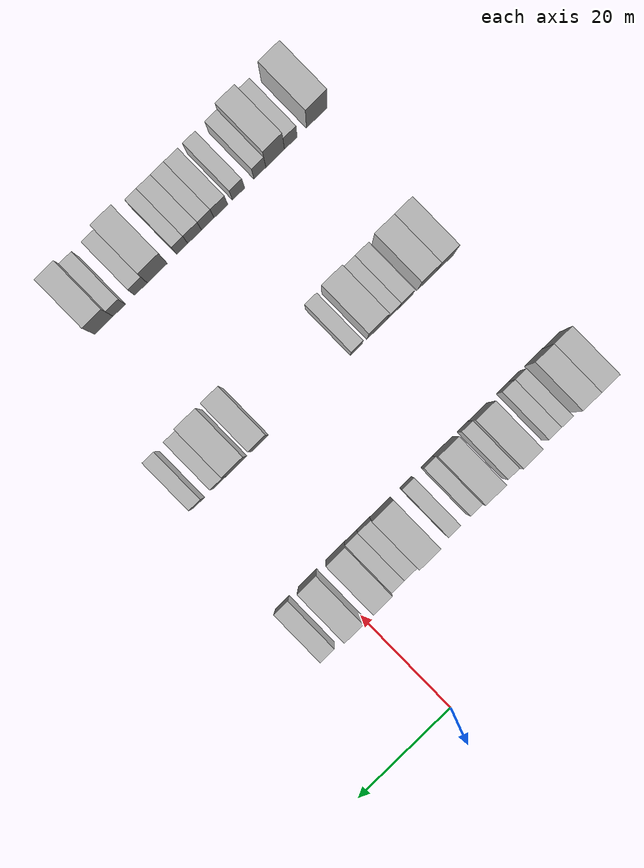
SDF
<sdf version="1.6">
 <world name="default">
  <model name="building_96">
   <static>1</static>
   <pose>25.0000 -50.8643 0 0.000000 0.000000 0.000000</pose>
   <link name="link">
    <pose>0 0 4.50 0 0 0</pose>
    <collision name="collision"><geometry><box><size>10.0000 3.7616 9.0000</size></box></geometry></collision>
    <visual name="visual">
     <cast_shadows>0</cast_shadows>
     <geometry><box><size>10.0000 3.7616 9.0000</size></box></geometry>
     <material>
      <script>
       <uri>model://HANNAS_wall/materials/scripts</uri>
       <uri>model://HANNAS_wall/materials/textures</uri>
       <name>vrc/HANNAS_wall</name>
      </script>
     </material>
    </visual>
   </link>
  </model>
  <model name="building_97">
   <static>1</static>
   <pose>25.0000 -47.0470 0 0.000000 0.000000 0.000000</pose>
   <link name="link">
    <pose>0 0 4.50 0 0 0</pose>
    <collision name="collision"><geometry><box><size>10.0000 3.8730 9.0000</size></box></geometry></collision>
    <visual name="visual">
     <cast_shadows>0</cast_shadows>
     <geometry><box><size>10.0000 3.8730 9.0000</size></box></geometry>
     <material>
      <script>
       <uri>model://HANNAS_wall/materials/scripts</uri>
       <uri>model://HANNAS_wall/materials/textures</uri>
       <name>vrc/HANNAS_wall</name>
      </script>
     </material>
    </visual>
   </link>
  </model>
  <model name="building_98">
   <static>1</static>
   <pose>25.0000 -42.9027 0 0.000000 0.000000 0.000000</pose>
   <link name="link">
    <pose>0 0 3.00 0 0 0</pose>
    <collision name="collision"><geometry><box><size>10.0000 2.4157 6.0000</size></box></geometry></collision>
    <visual name="visual">
     <cast_shadows>0</cast_shadows>
     <geometry><box><size>10.0000 2.4157 6.0000</size></box></geometry>
     <material>
      <script>
       <uri>model://HANNAS_wall/materials/scripts</uri>
       <uri>model://HANNAS_wall/materials/textures</uri>
       <name>vrc/HANNAS_wall</name>
      </script>
     </material>
    </visual>
   </link>
  </model>
  <model name="building_99">
   <static>1</static>
   <pose>25.0000 -40.3628 0 0.000000 0.000000 0.000000</pose>
   <link name="link">
    <pose>0 0 3.00 0 0 0</pose>
    <collision name="collision"><geometry><box><size>10.0000 2.6640 6.0000</size></box></geometry></collision>
    <visual name="visual">
     <cast_shadows>0</cast_shadows>
     <geometry><box><size>10.0000 2.6640 6.0000</size></box></geometry>
     <material>
      <script>
       <uri>model://HANNAS_wall/materials/scripts</uri>
       <uri>model://HANNAS_wall/materials/textures</uri>
       <name>vrc/HANNAS_wall</name>
      </script>
     </material>
    </visual>
   </link>
  </model>
  <model name="building_100">
   <static>1</static>
   <pose>25.0000 -34.9728 0 0.000000 0.000000 0.000000</pose>
   <link name="link">
    <pose>0 0 4.50 0 0 0</pose>
    <collision name="collision"><geometry><box><size>10.0000 4.1158 9.0000</size></box></geometry></collision>
    <visual name="visual">
     <cast_shadows>0</cast_shadows>
     <geometry><box><size>10.0000 4.1158 9.0000</size></box></geometry>
     <material>
      <script>
       <uri>model://HANNAS_wall/materials/scripts</uri>
       <uri>model://HANNAS_wall/materials/textures</uri>
       <name>vrc/HANNAS_wall</name>
      </script>
     </material>
    </visual>
   </link>
  </model>
  <model name="building_101">
   <static>1</static>
   <pose>25.0000 -31.7140 0 0.000000 0.000000 0.000000</pose>
   <link name="link">
    <pose>0 0 3.00 0 0 0</pose>
    <collision name="collision"><geometry><box><size>10.0000 2.4019 6.0000</size></box></geometry></collision>
    <visual name="visual">
     <cast_shadows>0</cast_shadows>
     <geometry><box><size>10.0000 2.4019 6.0000</size></box></geometry>
     <material>
      <script>
       <uri>model://HANNAS_wall/materials/scripts</uri>
       <uri>model://HANNAS_wall/materials/textures</uri>
       <name>vrc/HANNAS_wall</name>
      </script>
     </material>
    </visual>
   </link>
  </model>
  <model name="building_102">
   <static>1</static>
   <pose>25.0000 -27.3661 0 0.000000 0.000000 0.000000</pose>
   <link name="link">
    <pose>0 0 4.50 0 0 0</pose>
    <collision name="collision"><geometry><box><size>10.0000 4.2939 9.0000</size></box></geometry></collision>
    <visual name="visual">
     <cast_shadows>0</cast_shadows>
     <geometry><box><size>10.0000 4.2939 9.0000</size></box></geometry>
     <material>
      <script>
       <uri>model://HANNAS_wall/materials/scripts</uri>
       <uri>model://HANNAS_wall/materials/textures</uri>
       <name>vrc/HANNAS_wall</name>
      </script>
     </material>
    </visual>
   </link>
  </model>
  <model name="building_103">
   <static>1</static>
   <pose>25.0000 -23.9386 0 0.000000 0.000000 0.000000</pose>
   <link name="link">
    <pose>0 0 3.00 0 0 0</pose>
    <collision name="collision"><geometry><box><size>10.0000 2.5613 6.0000</size></box></geometry></collision>
    <visual name="visual">
     <cast_shadows>0</cast_shadows>
     <geometry><box><size>10.0000 2.5613 6.0000</size></box></geometry>
     <material>
      <script>
       <uri>model://HANNAS_wall/materials/scripts</uri>
       <uri>model://HANNAS_wall/materials/textures</uri>
       <name>vrc/HANNAS_wall</name>
      </script>
     </material>
    </visual>
   </link>
  </model>
  <model name="building_104">
   <static>1</static>
   <pose>25.0000 -19.3728 0 0.000000 0.000000 0.000000</pose>
   <link name="link">
    <pose>0 0 3.00 0 0 0</pose>
    <collision name="collision"><geometry><box><size>10.0000 2.5702 6.0000</size></box></geometry></collision>
    <visual name="visual">
     <cast_shadows>0</cast_shadows>
     <geometry><box><size>10.0000 2.5702 6.0000</size></box></geometry>
     <material>
      <script>
       <uri>model://HANNAS_wall/materials/scripts</uri>
       <uri>model://HANNAS_wall/materials/textures</uri>
       <name>vrc/HANNAS_wall</name>
      </script>
     </material>
    </visual>
   </link>
  </model>
  <model name="building_105">
   <static>1</static>
   <pose>25.0000 -13.8428 0 0.000000 0.000000 0.000000</pose>
   <link name="link">
    <pose>0 0 4.50 0 0 0</pose>
    <collision name="collision"><geometry><box><size>10.0000 4.4898 9.0000</size></box></geometry></collision>
    <visual name="visual">
     <cast_shadows>0</cast_shadows>
     <geometry><box><size>10.0000 4.4898 9.0000</size></box></geometry>
     <material>
      <script>
       <uri>model://HANNAS_wall/materials/scripts</uri>
       <uri>model://HANNAS_wall/materials/textures</uri>
       <name>vrc/HANNAS_wall</name>
      </script>
     </material>
    </visual>
   </link>
  </model>
  <model name="building_106">
   <static>1</static>
   <pose>25.0000 -10.2093 0 0.000000 0.000000 0.000000</pose>
   <link name="link">
    <pose>0 0 3.00 0 0 0</pose>
    <collision name="collision"><geometry><box><size>10.0000 2.7771 6.0000</size></box></geometry></collision>
    <visual name="visual">
     <cast_shadows>0</cast_shadows>
     <geometry><box><size>10.0000 2.7771 6.0000</size></box></geometry>
     <material>
      <script>
       <uri>model://HANNAS_wall/materials/scripts</uri>
       <uri>model://HANNAS_wall/materials/textures</uri>
       <name>vrc/HANNAS_wall</name>
      </script>
     </material>
    </visual>
   </link>
  </model>
  <model name="building_107">
   <static>1</static>
   <pose>25.0000 -7.4839 0 0.000000 0.000000 0.000000</pose>
   <link name="link">
    <pose>0 0 3.00 0 0 0</pose>
    <collision name="collision"><geometry><box><size>10.0000 2.6736 6.0000</size></box></geometry></collision>
    <visual name="visual">
     <cast_shadows>0</cast_shadows>
     <geometry><box><size>10.0000 2.6736 6.0000</size></box></geometry>
     <material>
      <script>
       <uri>model://HANNAS_wall/materials/scripts</uri>
       <uri>model://HANNAS_wall/materials/textures</uri>
       <name>vrc/HANNAS_wall</name>
      </script>
     </material>
    </visual>
   </link>
  </model>
  <model name="building_108">
   <static>1</static>
   <pose>25.0000 -4.1596 0 0.000000 0.000000 0.000000</pose>
   <link name="link">
    <pose>0 0 4.50 0 0 0</pose>
    <collision name="collision"><geometry><box><size>10.0000 3.9751 9.0000</size></box></geometry></collision>
    <visual name="visual">
     <cast_shadows>0</cast_shadows>
     <geometry><box><size>10.0000 3.9751 9.0000</size></box></geometry>
     <material>
      <script>
       <uri>model://HANNAS_wall/materials/scripts</uri>
       <uri>model://HANNAS_wall/materials/textures</uri>
       <name>vrc/HANNAS_wall</name>
      </script>
     </material>
    </visual>
   </link>
  </model>
  <model name="building_109">
   <static>1</static>
   <pose>25.0000 1.7895 0 0.000000 0.000000 0.000000</pose>
   <link name="link">
    <pose>0 0 4.50 0 0 0</pose>
    <collision name="collision"><geometry><box><size>10.0000 3.9231 9.0000</size></box></geometry></collision>
    <visual name="visual">
     <cast_shadows>0</cast_shadows>
     <geometry><box><size>10.0000 3.9231 9.0000</size></box></geometry>
     <material>
      <script>
       <uri>model://HANNAS_wall/materials/scripts</uri>
       <uri>model://HANNAS_wall/materials/textures</uri>
       <name>vrc/HANNAS_wall</name>
      </script>
     </material>
    </visual>
   </link>
  </model>
  <model name="building_110">
   <static>1</static>
   <pose>25.0000 7.2394 0 0.000000 0.000000 0.000000</pose>
   <link name="link">
    <pose>0 0 3.00 0 0 0</pose>
    <collision name="collision"><geometry><box><size>10.0000 2.9767 6.0000</size></box></geometry></collision>
    <visual name="visual">
     <cast_shadows>0</cast_shadows>
     <geometry><box><size>10.0000 2.9767 6.0000</size></box></geometry>
     <material>
      <script>
       <uri>model://HANNAS_wall/materials/scripts</uri>
       <uri>model://HANNAS_wall/materials/textures</uri>
       <name>vrc/HANNAS_wall</name>
      </script>
     </material>
    </visual>
   </link>
  </model>
  <model name="building_318">
   <static>1</static>
   <pose>55.0000 -47.3391 0 0.000000 0.000000 0.000000</pose>
   <link name="link">
    <pose>0 0 4.50 0 0 0</pose>
    <collision name="collision"><geometry><box><size>10.0000 3.6979 9.0000</size></box></geometry></collision>
    <visual name="visual">
     <cast_shadows>0</cast_shadows>
     <geometry><box><size>10.0000 3.6979 9.0000</size></box></geometry>
     <material>
      <script>
       <uri>model://HANNAS_wall/materials/scripts</uri>
       <uri>model://HANNAS_wall/materials/textures</uri>
       <name>vrc/HANNAS_wall</name>
      </script>
     </material>
    </visual>
   </link>
  </model>
  <model name="building_319">
   <static>1</static>
   <pose>55.0000 -43.4344 0 0.000000 0.000000 0.000000</pose>
   <link name="link">
    <pose>0 0 4.50 0 0 0</pose>
    <collision name="collision"><geometry><box><size>10.0000 4.1115 9.0000</size></box></geometry></collision>
    <visual name="visual">
     <cast_shadows>0</cast_shadows>
     <geometry><box><size>10.0000 4.1115 9.0000</size></box></geometry>
     <material>
      <script>
       <uri>model://HANNAS_wall/materials/scripts</uri>
       <uri>model://HANNAS_wall/materials/textures</uri>
       <name>vrc/HANNAS_wall</name>
      </script>
     </material>
    </visual>
   </link>
  </model>
  <model name="building_320">
   <static>1</static>
   <pose>55.0000 -38.9351 0 0.000000 0.000000 0.000000</pose>
   <link name="link">
    <pose>0 0 3.00 0 0 0</pose>
    <collision name="collision"><geometry><box><size>10.0000 2.8871 6.0000</size></box></geometry></collision>
    <visual name="visual">
     <cast_shadows>0</cast_shadows>
     <geometry><box><size>10.0000 2.8871 6.0000</size></box></geometry>
     <material>
      <script>
       <uri>model://HANNAS_wall/materials/scripts</uri>
       <uri>model://HANNAS_wall/materials/textures</uri>
       <name>vrc/HANNAS_wall</name>
      </script>
     </material>
    </visual>
   </link>
  </model>
  <model name="building_321">
   <static>1</static>
   <pose>55.0000 -36.1565 0 0.000000 0.000000 0.000000</pose>
   <link name="link">
    <pose>0 0 3.00 0 0 0</pose>
    <collision name="collision"><geometry><box><size>10.0000 2.6701 6.0000</size></box></geometry></collision>
    <visual name="visual">
     <cast_shadows>0</cast_shadows>
     <geometry><box><size>10.0000 2.6701 6.0000</size></box></geometry>
     <material>
      <script>
       <uri>model://HANNAS_wall/materials/scripts</uri>
       <uri>model://HANNAS_wall/materials/textures</uri>
       <name>vrc/HANNAS_wall</name>
      </script>
     </material>
    </visual>
   </link>
  </model>
  <model name="building_322">
   <static>1</static>
   <pose>55.0000 -32.6692 0 0.000000 0.000000 0.000000</pose>
   <link name="link">
    <pose>0 0 4.50 0 0 0</pose>
    <collision name="collision"><geometry><box><size>10.0000 4.3045 9.0000</size></box></geometry></collision>
    <visual name="visual">
     <cast_shadows>0</cast_shadows>
     <geometry><box><size>10.0000 4.3045 9.0000</size></box></geometry>
     <material>
      <script>
       <uri>model://HANNAS_wall/materials/scripts</uri>
       <uri>model://HANNAS_wall/materials/textures</uri>
       <name>vrc/HANNAS_wall</name>
      </script>
     </material>
    </visual>
   </link>
  </model>
  <model name="building_323">
   <static>1</static>
   <pose>55.0000 -28.2489 0 0.000000 0.000000 0.000000</pose>
   <link name="link">
    <pose>0 0 3.00 0 0 0</pose>
    <collision name="collision"><geometry><box><size>10.0000 2.5360 6.0000</size></box></geometry></collision>
    <visual name="visual">
     <cast_shadows>0</cast_shadows>
     <geometry><box><size>10.0000 2.5360 6.0000</size></box></geometry>
     <material>
      <script>
       <uri>model://HANNAS_wall/materials/scripts</uri>
       <uri>model://HANNAS_wall/materials/textures</uri>
       <name>vrc/HANNAS_wall</name>
      </script>
     </material>
    </visual>
   </link>
  </model>
  <model name="building_324">
   <static>1</static>
   <pose>55.0000 -7.5029 0 0.000000 0.000000 0.000000</pose>
   <link name="link">
    <pose>0 0 4.50 0 0 0</pose>
    <collision name="collision"><geometry><box><size>10.0000 3.6520 9.0000</size></box></geometry></collision>
    <visual name="visual">
     <cast_shadows>0</cast_shadows>
     <geometry><box><size>10.0000 3.6520 9.0000</size></box></geometry>
     <material>
      <script>
       <uri>model://HANNAS_wall/materials/scripts</uri>
       <uri>model://HANNAS_wall/materials/textures</uri>
       <name>vrc/HANNAS_wall</name>
      </script>
     </material>
    </visual>
   </link>
  </model>
  <model name="building_325">
   <static>1</static>
   <pose>55.0000 -2.4614 0 0.000000 0.000000 0.000000</pose>
   <link name="link">
    <pose>0 0 4.50 0 0 0</pose>
    <collision name="collision"><geometry><box><size>10.0000 4.4309 9.0000</size></box></geometry></collision>
    <visual name="visual">
     <cast_shadows>0</cast_shadows>
     <geometry><box><size>10.0000 4.4309 9.0000</size></box></geometry>
     <material>
      <script>
       <uri>model://HANNAS_wall/materials/scripts</uri>
       <uri>model://HANNAS_wall/materials/textures</uri>
       <name>vrc/HANNAS_wall</name>
      </script>
     </material>
    </visual>
   </link>
  </model>
  <model name="building_326">
   <static>1</static>
   <pose>55.0000 1.1414 0 0.000000 0.000000 0.000000</pose>
   <link name="link">
    <pose>0 0 3.00 0 0 0</pose>
    <collision name="collision"><geometry><box><size>10.0000 2.7747 6.0000</size></box></geometry></collision>
    <visual name="visual">
     <cast_shadows>0</cast_shadows>
     <geometry><box><size>10.0000 2.7747 6.0000</size></box></geometry>
     <material>
      <script>
       <uri>model://HANNAS_wall/materials/scripts</uri>
       <uri>model://HANNAS_wall/materials/textures</uri>
       <name>vrc/HANNAS_wall</name>
      </script>
     </material>
    </visual>
   </link>
  </model>
  <model name="building_327">
   <static>1</static>
   <pose>55.0000 5.7450 0 0.000000 0.000000 0.000000</pose>
   <link name="link">
    <pose>0 0 3.00 0 0 0</pose>
    <collision name="collision"><geometry><box><size>10.0000 2.4326 6.0000</size></box></geometry></collision>
    <visual name="visual">
     <cast_shadows>0</cast_shadows>
     <geometry><box><size>10.0000 2.4326 6.0000</size></box></geometry>
     <material>
      <script>
       <uri>model://HANNAS_wall/materials/scripts</uri>
       <uri>model://HANNAS_wall/materials/textures</uri>
       <name>vrc/HANNAS_wall</name>
      </script>
     </material>
    </visual>
   </link>
  </model>
  <model name="building_542">
   <static>1</static>
   <pose>85.0000 -48.9442 0 0.000000 0.000000 0.000000</pose>
   <link name="link">
    <pose>0 0 4.50 0 0 0</pose>
    <collision name="collision"><geometry><box><size>10.0000 4.4703 9.0000</size></box></geometry></collision>
    <visual name="visual">
     <cast_shadows>0</cast_shadows>
     <geometry><box><size>10.0000 4.4703 9.0000</size></box></geometry>
     <material>
      <script>
       <uri>model://HANNAS_wall/materials/scripts</uri>
       <uri>model://HANNAS_wall/materials/textures</uri>
       <name>vrc/HANNAS_wall</name>
      </script>
     </material>
    </visual>
   </link>
  </model>
  <model name="building_543">
   <static>1</static>
   <pose>85.0000 -43.3346 0 0.000000 0.000000 0.000000</pose>
   <link name="link">
    <pose>0 0 3.00 0 0 0</pose>
    <collision name="collision"><geometry><box><size>10.0000 2.7489 6.0000</size></box></geometry></collision>
    <visual name="visual">
     <cast_shadows>0</cast_shadows>
     <geometry><box><size>10.0000 2.7489 6.0000</size></box></geometry>
     <material>
      <script>
       <uri>model://HANNAS_wall/materials/scripts</uri>
       <uri>model://HANNAS_wall/materials/textures</uri>
       <name>vrc/HANNAS_wall</name>
      </script>
     </material>
    </visual>
   </link>
  </model>
  <model name="building_544">
   <static>1</static>
   <pose>85.0000 -39.9580 0 0.000000 0.000000 0.000000</pose>
   <link name="link">
    <pose>0 0 4.50 0 0 0</pose>
    <collision name="collision"><geometry><box><size>10.0000 4.0042 9.0000</size></box></geometry></collision>
    <visual name="visual">
     <cast_shadows>0</cast_shadows>
     <geometry><box><size>10.0000 4.0042 9.0000</size></box></geometry>
     <material>
      <script>
       <uri>model://HANNAS_wall/materials/scripts</uri>
       <uri>model://HANNAS_wall/materials/textures</uri>
       <name>vrc/HANNAS_wall</name>
      </script>
     </material>
    </visual>
   </link>
  </model>
  <model name="building_545">
   <static>1</static>
   <pose>85.0000 -36.6675 0 0.000000 0.000000 0.000000</pose>
   <link name="link">
    <pose>0 0 3.00 0 0 0</pose>
    <collision name="collision"><geometry><box><size>10.0000 2.5767 6.0000</size></box></geometry></collision>
    <visual name="visual">
     <cast_shadows>0</cast_shadows>
     <geometry><box><size>10.0000 2.5767 6.0000</size></box></geometry>
     <material>
      <script>
       <uri>model://HANNAS_wall/materials/scripts</uri>
       <uri>model://HANNAS_wall/materials/textures</uri>
       <name>vrc/HANNAS_wall</name>
      </script>
     </material>
    </visual>
   </link>
  </model>
  <model name="building_546">
   <static>1</static>
   <pose>85.0000 -32.0566 0 0.000000 0.000000 0.000000</pose>
   <link name="link">
    <pose>0 0 3.00 0 0 0</pose>
    <collision name="collision"><geometry><box><size>10.0000 2.6451 6.0000</size></box></geometry></collision>
    <visual name="visual">
     <cast_shadows>0</cast_shadows>
     <geometry><box><size>10.0000 2.6451 6.0000</size></box></geometry>
     <material>
      <script>
       <uri>model://HANNAS_wall/materials/scripts</uri>
       <uri>model://HANNAS_wall/materials/textures</uri>
       <name>vrc/HANNAS_wall</name>
      </script>
     </material>
    </visual>
   </link>
  </model>
  <model name="building_547">
   <static>1</static>
   <pose>85.0000 -28.2557 0 0.000000 0.000000 0.000000</pose>
   <link name="link">
    <pose>0 0 3.00 0 0 0</pose>
    <collision name="collision"><geometry><box><size>10.0000 2.9567 6.0000</size></box></geometry></collision>
    <visual name="visual">
     <cast_shadows>0</cast_shadows>
     <geometry><box><size>10.0000 2.9567 6.0000</size></box></geometry>
     <material>
      <script>
       <uri>model://HANNAS_wall/materials/scripts</uri>
       <uri>model://HANNAS_wall/materials/textures</uri>
       <name>vrc/HANNAS_wall</name>
      </script>
     </material>
    </visual>
   </link>
  </model>
  <model name="building_548">
   <static>1</static>
   <pose>85.0000 -25.4140 0 0.000000 0.000000 0.000000</pose>
   <link name="link">
    <pose>0 0 3.00 0 0 0</pose>
    <collision name="collision"><geometry><box><size>10.0000 2.7268 6.0000</size></box></geometry></collision>
    <visual name="visual">
     <cast_shadows>0</cast_shadows>
     <geometry><box><size>10.0000 2.7268 6.0000</size></box></geometry>
     <material>
      <script>
       <uri>model://HANNAS_wall/materials/scripts</uri>
       <uri>model://HANNAS_wall/materials/textures</uri>
       <name>vrc/HANNAS_wall</name>
      </script>
     </material>
    </visual>
   </link>
  </model>
  <model name="building_549">
   <static>1</static>
   <pose>85.0000 -22.5615 0 0.000000 0.000000 0.000000</pose>
   <link name="link">
    <pose>0 0 3.00 0 0 0</pose>
    <collision name="collision"><geometry><box><size>10.0000 2.9781 6.0000</size></box></geometry></collision>
    <visual name="visual">
     <cast_shadows>0</cast_shadows>
     <geometry><box><size>10.0000 2.9781 6.0000</size></box></geometry>
     <material>
      <script>
       <uri>model://HANNAS_wall/materials/scripts</uri>
       <uri>model://HANNAS_wall/materials/textures</uri>
       <name>vrc/HANNAS_wall</name>
      </script>
     </material>
    </visual>
   </link>
  </model>
  <model name="building_550">
   <static>1</static>
   <pose>85.0000 -19.8662 0 0.000000 0.000000 0.000000</pose>
   <link name="link">
    <pose>0 0 3.00 0 0 0</pose>
    <collision name="collision"><geometry><box><size>10.0000 2.4125 6.0000</size></box></geometry></collision>
    <visual name="visual">
     <cast_shadows>0</cast_shadows>
     <geometry><box><size>10.0000 2.4125 6.0000</size></box></geometry>
     <material>
      <script>
       <uri>model://HANNAS_wall/materials/scripts</uri>
       <uri>model://HANNAS_wall/materials/textures</uri>
       <name>vrc/HANNAS_wall</name>
      </script>
     </material>
    </visual>
   </link>
  </model>
  <model name="building_551">
   <static>1</static>
   <pose>85.0000 -14.4963 0 0.000000 0.000000 0.000000</pose>
   <link name="link">
    <pose>0 0 4.50 0 0 0</pose>
    <collision name="collision"><geometry><box><size>10.0000 4.3272 9.0000</size></box></geometry></collision>
    <visual name="visual">
     <cast_shadows>0</cast_shadows>
     <geometry><box><size>10.0000 4.3272 9.0000</size></box></geometry>
     <material>
      <script>
       <uri>model://HANNAS_wall/materials/scripts</uri>
       <uri>model://HANNAS_wall/materials/textures</uri>
       <name>vrc/HANNAS_wall</name>
      </script>
     </material>
    </visual>
   </link>
  </model>
  <model name="building_552">
   <static>1</static>
   <pose>85.0000 -10.9630 0 0.000000 0.000000 0.000000</pose>
   <link name="link">
    <pose>0 0 3.00 0 0 0</pose>
    <collision name="collision"><geometry><box><size>10.0000 2.7395 6.0000</size></box></geometry></collision>
    <visual name="visual">
     <cast_shadows>0</cast_shadows>
     <geometry><box><size>10.0000 2.7395 6.0000</size></box></geometry>
     <material>
      <script>
       <uri>model://HANNAS_wall/materials/scripts</uri>
       <uri>model://HANNAS_wall/materials/textures</uri>
       <name>vrc/HANNAS_wall</name>
      </script>
     </material>
    </visual>
   </link>
  </model>
  <model name="building_553">
   <static>1</static>
   <pose>85.0000 -6.2572 0 0.000000 0.000000 0.000000</pose>
   <link name="link">
    <pose>0 0 3.00 0 0 0</pose>
    <collision name="collision"><geometry><box><size>10.0000 2.6720 6.0000</size></box></geometry></collision>
    <visual name="visual">
     <cast_shadows>0</cast_shadows>
     <geometry><box><size>10.0000 2.6720 6.0000</size></box></geometry>
     <material>
      <script>
       <uri>model://HANNAS_wall/materials/scripts</uri>
       <uri>model://HANNAS_wall/materials/textures</uri>
       <name>vrc/HANNAS_wall</name>
      </script>
     </material>
    </visual>
   </link>
  </model>
  <model name="building_554">
   <static>1</static>
   <pose>85.0000 -2.9309 0 0.000000 0.000000 0.000000</pose>
   <link name="link">
    <pose>0 0 4.50 0 0 0</pose>
    <collision name="collision"><geometry><box><size>10.0000 3.9807 9.0000</size></box></geometry></collision>
    <visual name="visual">
     <cast_shadows>0</cast_shadows>
     <geometry><box><size>10.0000 3.9807 9.0000</size></box></geometry>
     <material>
      <script>
       <uri>model://HANNAS_wall/materials/scripts</uri>
       <uri>model://HANNAS_wall/materials/textures</uri>
       <name>vrc/HANNAS_wall</name>
      </script>
     </material>
    </visual>
   </link>
  </model>
 </world>
</sdf>
